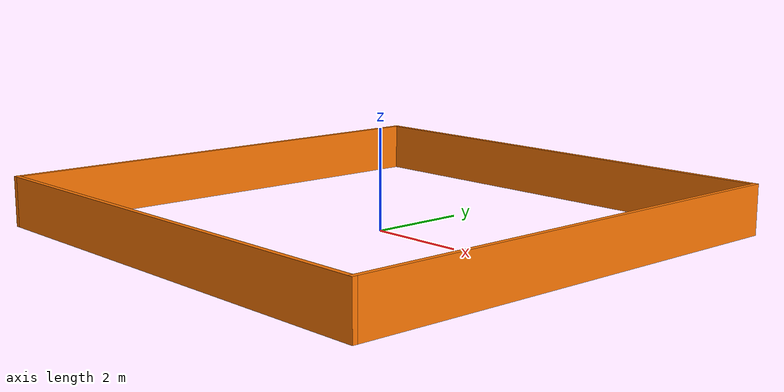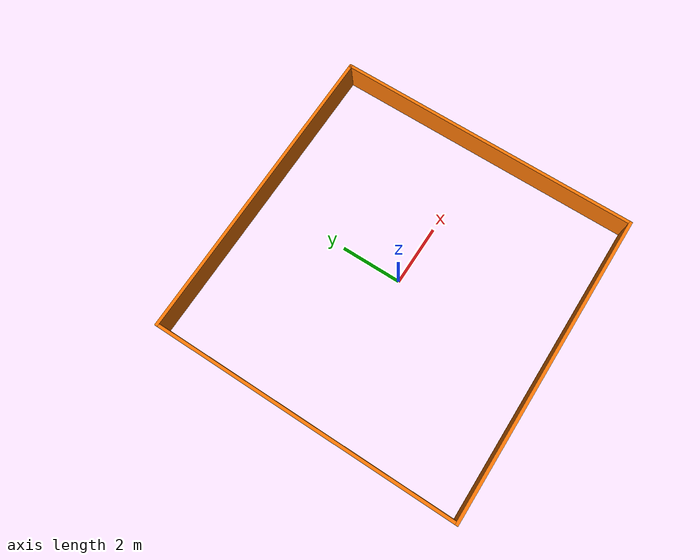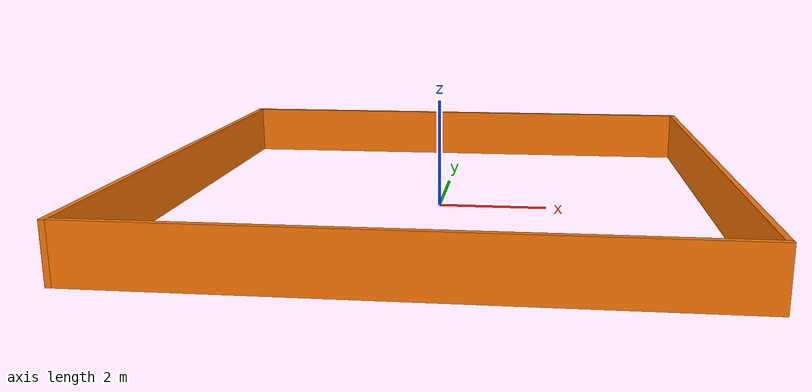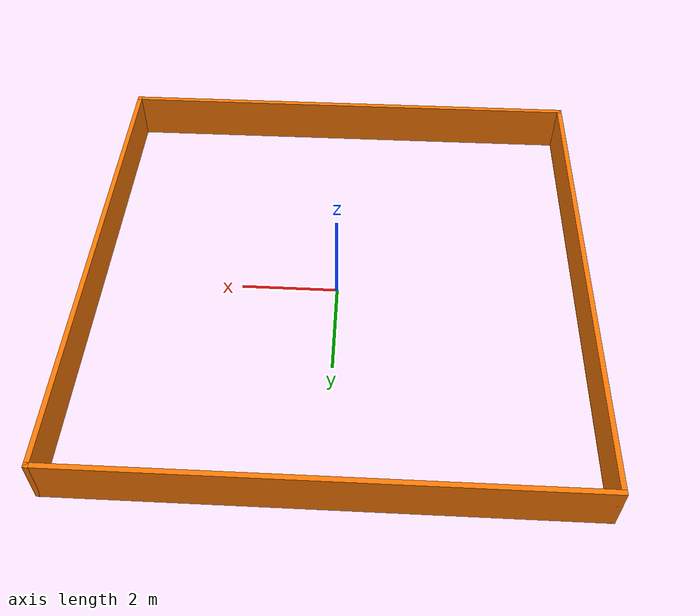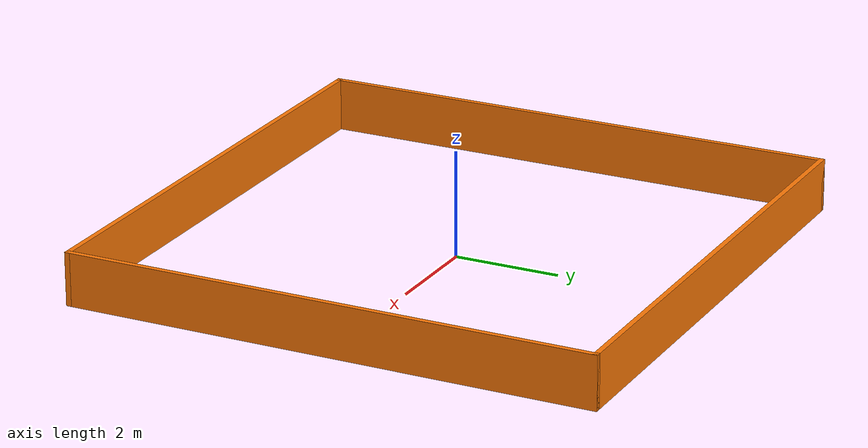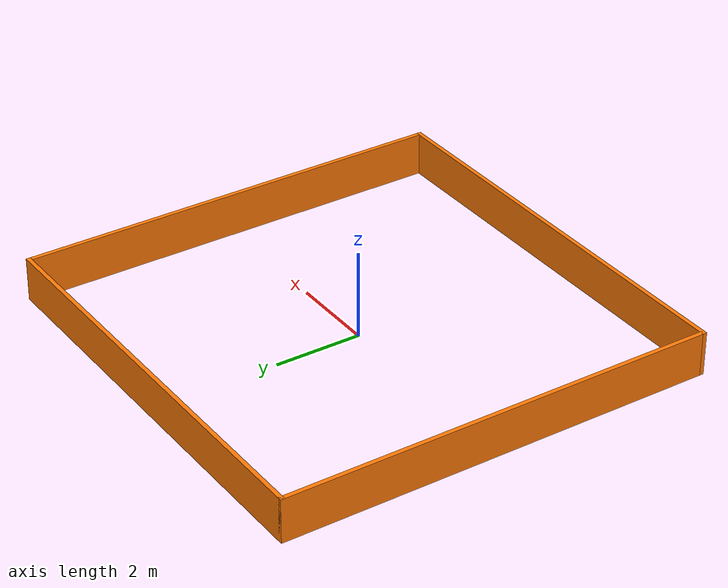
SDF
<?xml version='1.0'?>
<sdf version='1.6'>
  <model name='world3'>
    <pose frame=''>0 0 0 0 -0 0</pose>
    <link name='Wall_0'>
      <collision name='Wall_0_Collision'>
        <geometry>
          <box>
            <size>10.1 0.1 1</size>
          </box>
        </geometry>
        <pose frame=''>0 0 0.5 0 -0 0</pose>
      </collision>
      <visual name='Wall_0_Visual'>
        <pose frame=''>0 0 0.5 0 -0 0</pose>
        <geometry>
          <box>
            <size>10.1 0.1 1</size>
          </box>
        </geometry>
        <material>
          <script>
            <uri>file://media/materials/scripts/gazebo.material</uri>
            <name>Gazebo/Grey</name>
          </script>
          <ambient>0.996078 0.47451 0.0196078 1</ambient>
        </material>
        <meta>
          <layer>0</layer>
        </meta>
      </visual>
      <pose frame=''>0 5 0 0 -0 0</pose>
    </link>
    <link name='Wall_1'>
      <collision name='Wall_1_Collision'>
        <geometry>
          <box>
            <size>10.1 0.1 1</size>
          </box>
        </geometry>
        <pose frame=''>0 0 0.5 0 -0 0</pose>
      </collision>
      <visual name='Wall_1_Visual'>
        <pose frame=''>0 0 0.5 0 -0 0</pose>
        <geometry>
          <box>
            <size>10.1 0.1 1</size>
          </box>
        </geometry>
        <material>
          <script>
            <uri>file://media/materials/scripts/gazebo.material</uri>
            <name>Gazebo/Grey</name>
          </script>
          <ambient>0.996078 0.47451 0.0196078 1</ambient>
        </material>
        <meta>
          <layer>0</layer>
        </meta>
      </visual>
      <pose frame=''>5 0 0 0 -0 -1.5708</pose>
    </link>
    <link name='Wall_2'>
      <collision name='Wall_2_Collision'>
        <geometry>
          <box>
            <size>10.1 0.1 1</size>
          </box>
        </geometry>
        <pose frame=''>0 0 0.5 0 -0 0</pose>
      </collision>
      <visual name='Wall_2_Visual'>
        <pose frame=''>0 0 0.5 0 -0 0</pose>
        <geometry>
          <box>
            <size>10.1 0.1 1</size>
          </box>
        </geometry>
        <material>
          <script>
            <uri>file://media/materials/scripts/gazebo.material</uri>
            <name>Gazebo/Grey</name>
          </script>
          <ambient>0.996078 0.47451 0.0196078 1</ambient>
        </material>
        <meta>
          <layer>0</layer>
        </meta>
      </visual>
      <pose frame=''>0 -5 0 0 -0 3.14159</pose>
    </link>
    <link name='Wall_3'>
      <collision name='Wall_3_Collision'>
        <geometry>
          <box>
            <size>10.1 0.1 1</size>
          </box>
        </geometry>
        <pose frame=''>0 0 0.5 0 -0 0</pose>
      </collision>
      <visual name='Wall_3_Visual'>
        <pose frame=''>0 0 0.5 0 -0 0</pose>
        <geometry>
          <box>
            <size>10.1 0.1 1</size>
          </box>
        </geometry>
        <material>
          <script>
            <uri>file://media/materials/scripts/gazebo.material</uri>
            <name>Gazebo/Grey</name>
          </script>
          <ambient>0.996078 0.47451 0.0196078 1</ambient>
        </material>
        <meta>
          <layer>0</layer>
        </meta>
      </visual>
      <pose frame=''>-5 0 0 0 -0 1.5708</pose>
    </link>
    <static>1</static>
  </model>
</sdf>
